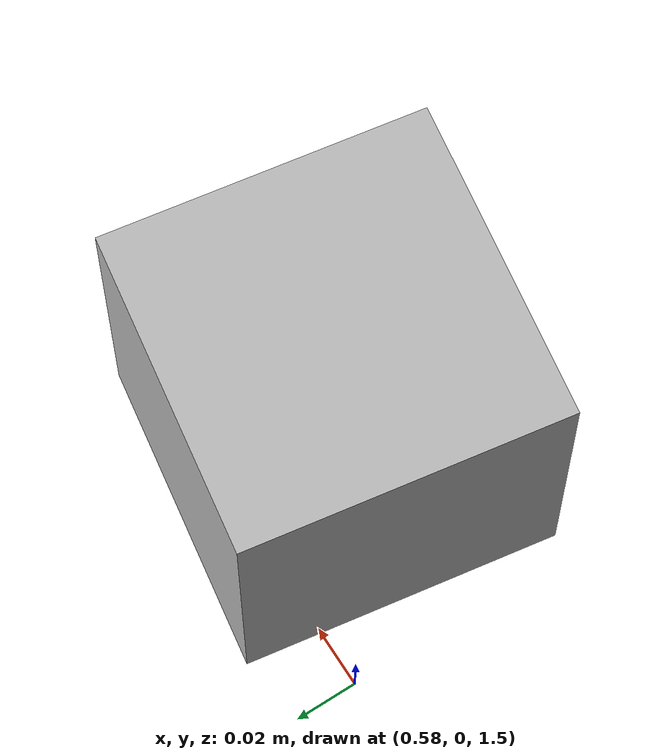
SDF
<?xml version="1.0" ?>
<sdf version="1.6">
  <world name="default">
    <include>
      <uri>model://ground_plane</uri>
    </include>

    <include>
      <uri>model://sun</uri>
    </include>

    <physics type="ode">
      <real_time_update_rate>1000.0</real_time_update_rate>
    </physics>

    <gravity>
      0.0 0.0 -9.81
    </gravity>

    <model name='camera'>
        <link name='link'>
          <gravity>0</gravity>
          <pose frame=''>0.644692 -0.033983 1.547130 0.0 0.0 2.987412</pose>
          <inertial>
            <mass>0.1</mass>
            <inertia>
              <ixx>1</ixx>
              <ixy>0</ixy>
              <ixz>0</ixz>
              <iyy>1</iyy>
              <iyz>0</iyz>
              <izz>1</izz>
            </inertia>
          </inertial>
          <visual name='visual'>
            <geometry>
              <box>
                <size>0.1 0.1 0.1</size>
              </box>
            </geometry>
          </visual>
          <sensor name='camera' type='camera'>
            <update_rate>30</update_rate>
            <camera name='__default__'>
            <horizontal_fov>1.047</horizontal_fov>
            <image>
              <width>800</width>
              <height>800</height>
              <format>R8G8B8</format>
            </image>
            <clip>
              <near>0.1</near>
              <far>100</far>
            </clip>
            <noise>
              <type>gaussian</type>
              <mean>0</mean>
              <stddev>0.007</stddev>
            </noise>
            </camera>
            <plugin name='camera_controller' filename='libgazebo_ros_camera.so'>
            <alwaysOn>true</alwaysOn>
            <cameraName>/bax/cam</cameraName>
            <imageTopicName>image_raw</imageTopicName>
            <cameraInfoTopicName>camera_info</cameraInfoTopicName>
            <frameName>camera</frameName>
            <hackBaseline>0.07</hackBaseline>
            <distortionK1>0.0</distortionK1>
            <distortionK2>0.0</distortionK2>
            <distortionK3>0.0</distortionK3>
            <distortionT1>0.0</distortionT1>
            <distortionT2>0.0</distortionT2>
          </plugin>
          </sensor>
          <self_collide>0</self_collide>
          <kinematic>0</kinematic>
        </link>
      </model>
  </world>
</sdf>
